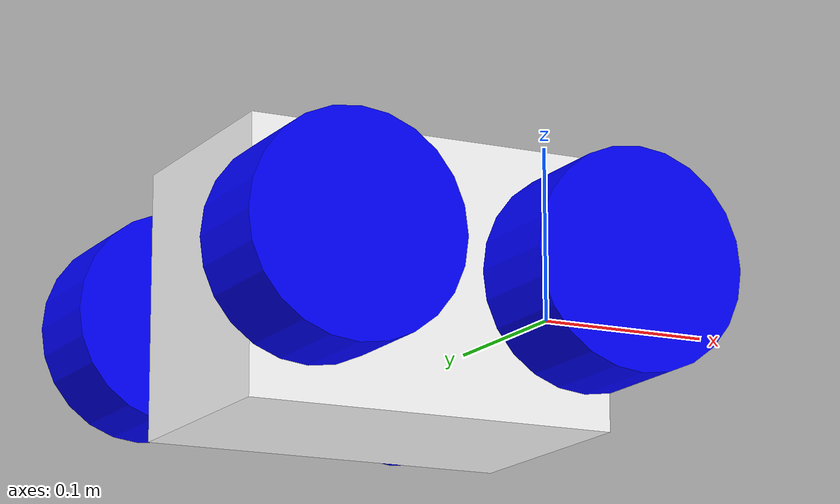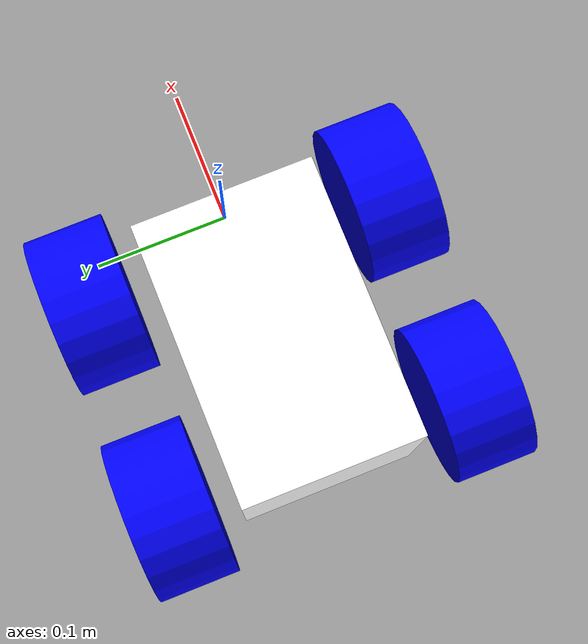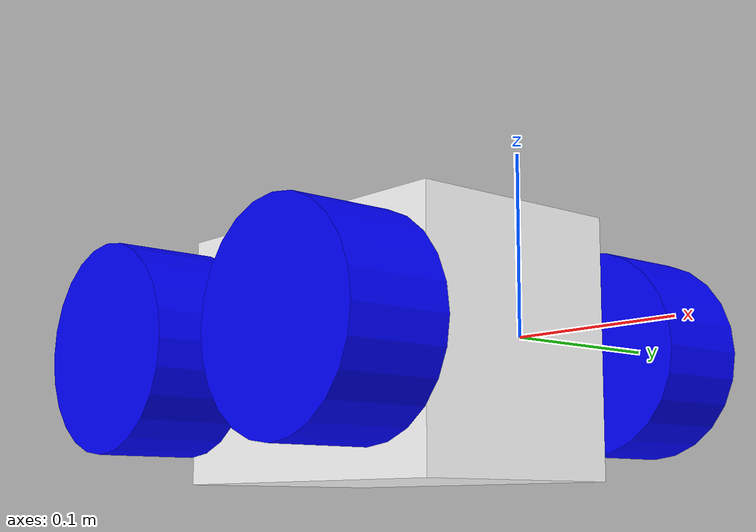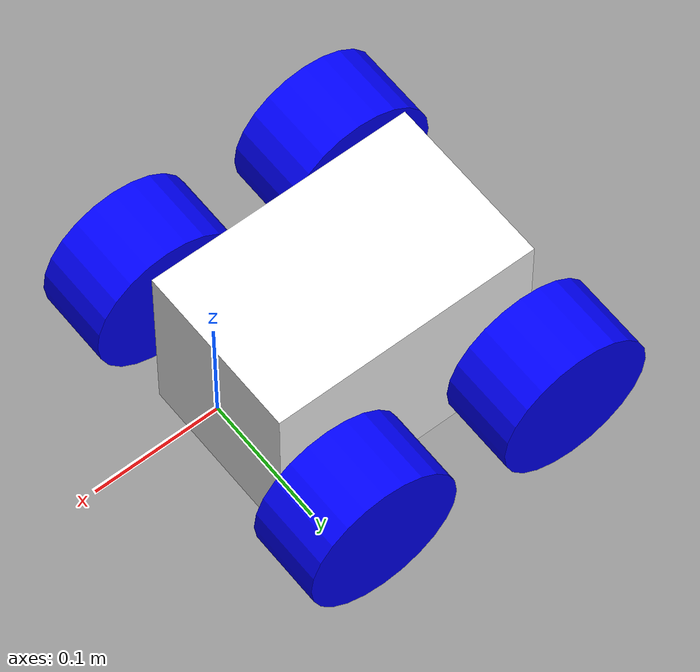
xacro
<?xml version="1.0"?>
<robot xmlns:xacro="http://www.ros.org/wiki/xacro">
    <xacro:include filename="colors.xacro"/>

    <!-- BASE LINK -->

    <link name="base_link"></link>

    <!-- BASE FOOTPRINT LINK -->
    <joint name="base_footprint_joint" type="fixed">
        <parent link="base_link"/>
        <child link="base_footprint"/>
        <origin xyz="0 0 0" rpy="0 0 0"/>
    </joint>

    <link name="base_footprint"></link>

    <!-- CHASSIS LINK -->

    <joint name="chassis_joint" type="fixed">
        <parent link="base_link"/>
        <child link="chassis"/>
        <origin xyz="-0.105 0 0"/>
    </joint>

    <link name="chassis">
        <parent link="chassis_joint"/>
        <visual>
            <geometry>
                <box size="0.21 0.135 0.15"/>
            </geometry>
            <material name="white"/>
        </visual>
        <collision>
            <geometry>
                <box size="0.21 0.135 0.15"/>
            </geometry>
        </collision>
        <inertial>
            <origin xyz="0 0 0" rpy="0 0 0"/>
            <mass value="20"/>
            <inertia
                ixx="${20*(0.135*0.135+0.15*0.15)/12}" ixy="0.0" ixz="0.0"
                iyy="${20*(0.21*0.21+0.15*0.15)/12}" iyz="0.0"
                izz="${20*(0.21*0.21+0.135*0.135)/12}"
            />
        </inertial>
    </link>

    <gazebo reference="chassis">
        <material>Gazebo/White</material>
    </gazebo>

    <joint name="front_left_wheel_joint" type="continuous">
        <parent link="chassis"/>
        <child link="front_left_wheel"/>
        <origin xyz="0.08 0.1145 0" rpy="-${pi/2} 0 0"/>
        <axis xyz="0 0 1"/>
    </joint>

    <link name="front_left_wheel">
        <visual>
            <geometry>
                <cylinder radius="0.06" length="0.06"/>
            </geometry>
            <material name="blue"/>
        </visual>
        <collision>
            <geometry>
                <sphere radius="0.06"/>
            </geometry>
        </collision>
        <inertial>
            <origin xyz="0 0 0" rpy="0 0 0"/>
            <mass value="0.17"/>
            <inertia
                ixx="${0.17*(3*0.06*0.06+0.06*0.06)/12}" ixy="0.0" ixz="0.0"
                iyy="${0.17*(3*0.06*0.06+0.06*0.06)/12}" iyz="0.0"
                izz="${0.17*(0.06*0.06)/2}"
            />
        </inertial>
    </link>

    <gazebo reference="front_left_wheel">
        <material>Gazebo/Blue</material>
    </gazebo>

    <joint name="front_right_wheel_joint" type="continuous">
        <parent link="chassis"/>
        <child link="front_right_wheel"/>
        <origin xyz="0.08 -0.1145 0" rpy="${pi/2} 0 0"/>
        <axis xyz="0 0 -1"/>
    </joint>

    <link name="front_right_wheel">
        <visual>
            <geometry>
                <cylinder radius="0.06" length="0.06"/>
            </geometry>
            <material name="blue"/>
        </visual>
        <collision>
            <geometry>
                <sphere radius="0.06"/>
            </geometry>
        </collision>
        <inertial>
            <origin xyz="0 0 0" rpy="0 0 0"/>
            <mass value="0.17"/>
            <inertia
                ixx="${0.17*(3*0.06*0.06+0.06*0.06)/12}" ixy="0.0" ixz="0.0"
                iyy="${0.17*(3*0.06*0.06+0.06*0.06)/12}" iyz="0.0"
                izz="${0.17*(0.06*0.06)/2}"
            />
        </inertial>
    </link>

    <gazebo reference="front_right_wheel">
        <material>Gazebo/Blue</material>
    </gazebo>

    <joint name="back_left_wheel_joint" type="continuous">
        <parent link="chassis"/>
        <child link="back_left_wheel"/>
        <origin xyz="-0.08 0.1145 0" rpy="-${pi/2} 0 0"/>
        <axis xyz="0 0 1"/>
    </joint>

    <link name="back_left_wheel">
        <visual>
            <geometry>
                <cylinder radius="0.06" length="0.06"/>
            </geometry>
            <material name="blue"/>
        </visual>
        <collision>
            <geometry>
                <sphere radius="0.06"/>
            </geometry>
        </collision>
        <inertial>
            <origin xyz="0 0 0" rpy="0 0 0"/>
            <mass value="0.17"/>
            <inertia
                ixx="${0.17*(3*0.06*0.06+0.06*0.06)/12}" ixy="0.0" ixz="0.0"
                iyy="${0.17*(3*0.06*0.06+0.06*0.06)/12}" iyz="0.0"
                izz="${0.17*(0.06*0.06)/2}"
            />
        </inertial>
    </link>

    <gazebo reference="back_left_wheel">
        <material>Gazebo/Blue</material>
    </gazebo>

    <joint name="back_right_wheel_joint" type="continuous">
        <parent link="chassis"/>
        <child link="back_right_wheel"/>
        <origin xyz="-0.08 -0.1145 0" rpy="${pi/2} 0 0"/>
        <axis xyz="0 0 -1"/>
    </joint>

    <link name="back_right_wheel">
        <visual>
            <geometry>
                <cylinder radius="0.06" length="0.06"/>
            </geometry>
            <material name="blue"/>
        </visual>
        <collision>
            <geometry>
                <sphere radius="0.06"/>
            </geometry>
        </collision>
        <inertial>
            <origin xyz="0 0 0" rpy="0 0 0"/>
            <mass value="0.17"/>
            <inertia
                ixx="${0.17*(3*0.06*0.06+0.06*0.06)/12}" ixy="0.0" ixz="0.0"
                iyy="${0.17*(3*0.06*0.06+0.06*0.06)/12}" iyz="0.0"
                izz="${0.17*(0.06*0.06)/2}"
            />
        </inertial>
    </link>

    <gazebo reference="back_right_wheel">
        <material>Gazebo/Blue</material>
    </gazebo>

</robot>

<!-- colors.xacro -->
<robot xmlns:xacro="http://www.ros.org/wiki/xacro">
    <material name="white">
        <color rgba="1 1 1 1"/>
    </material>
    <material name="red">
        <color rgba="1 0 0 1"/>
    </material>
    <material name="blue">
        <color rgba="0 0 1 1"/>
    </material>
    <material name="black">
        <color rgba="0 0 0 1"/>
    </material>
</robot>
